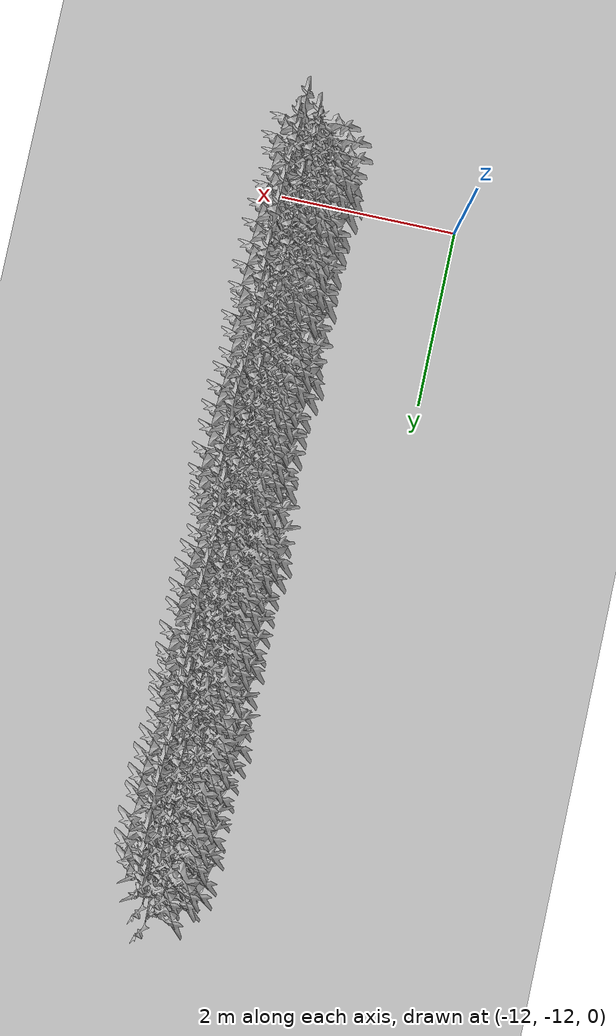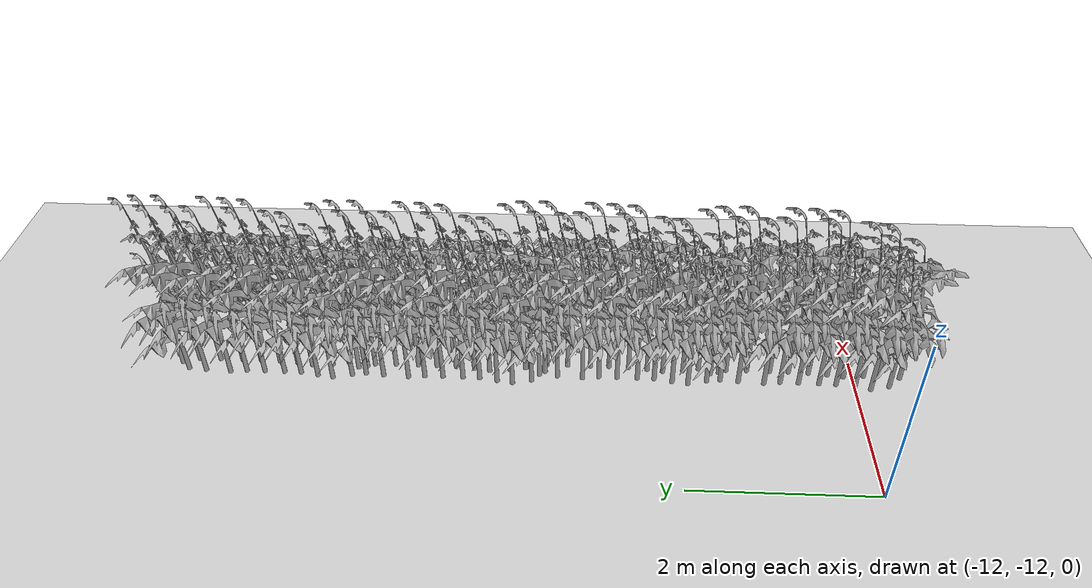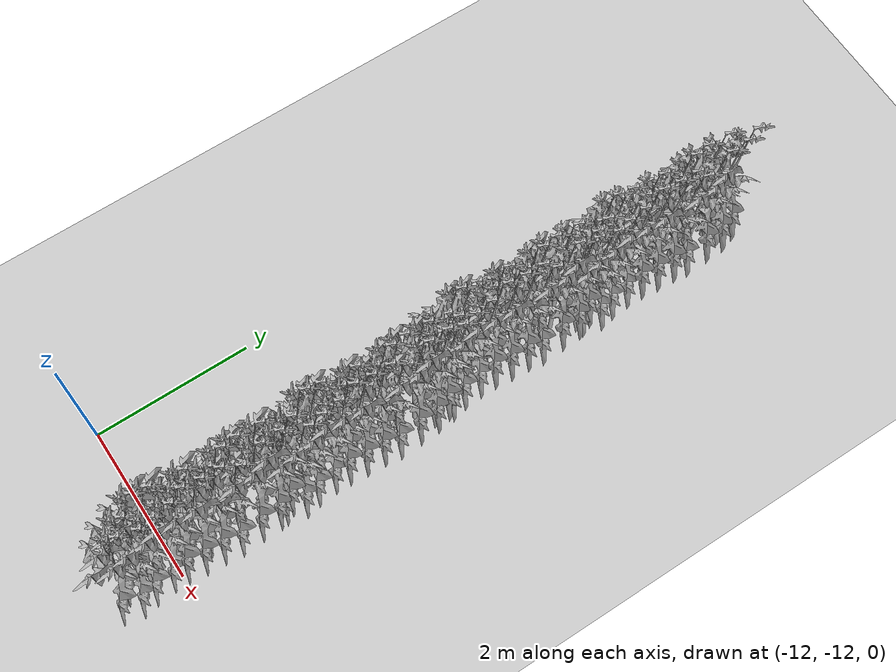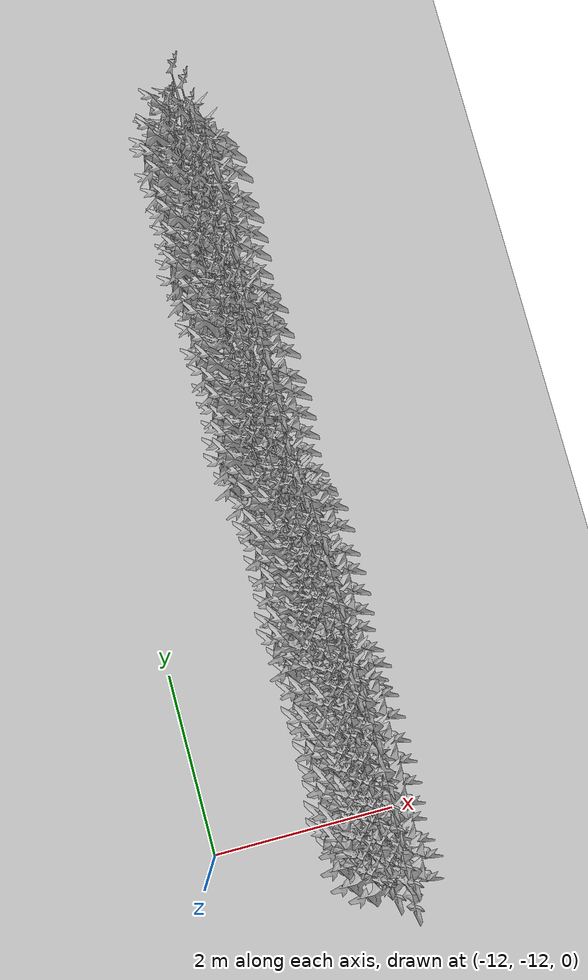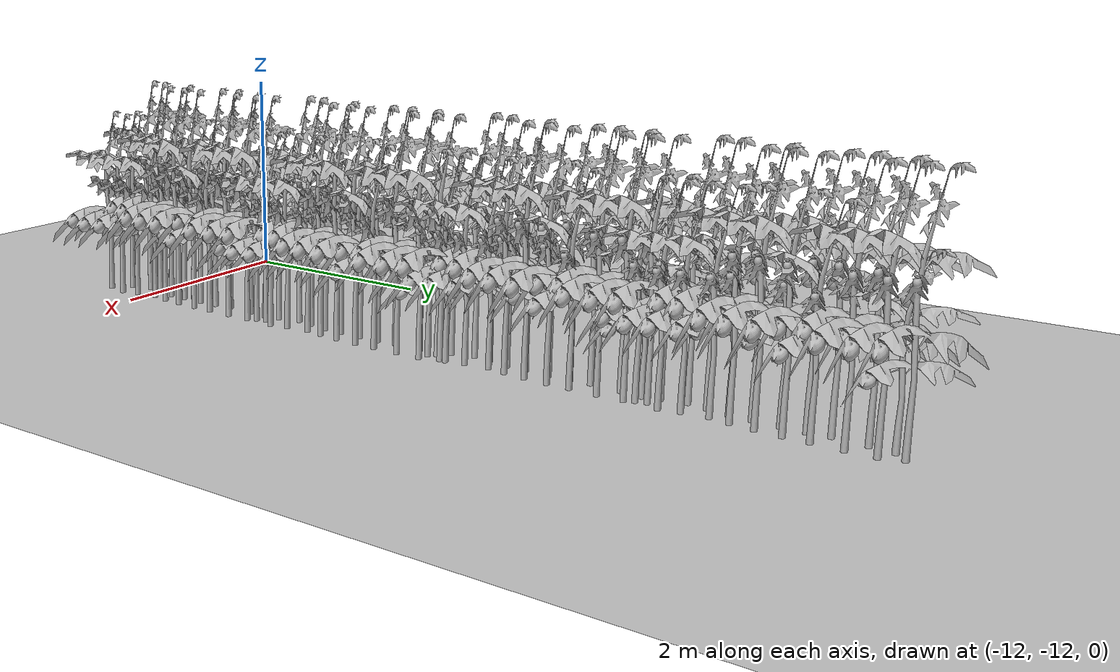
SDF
<sdf version="1.6">
 <world name="default">
  <model name="ground_plane">
   <static>1</static>
   <link name="link">
    <collision name="collision">
     <geometry><plane><normal>0 0 1</normal><size>100 100</size></plane></geometry>
     <surface>
      <contact><collide_bitmask>65535</collide_bitmask></contact>
      <friction><ode><mu>100</mu><mu2>50</mu2></ode></friction>
     </surface>
    </collision>
    <visual name="visual">
     <cast_shadows>0</cast_shadows>
     <geometry><plane><normal>0 0 1</normal><size>100 100</size></plane></geometry>
     <material>
      <script><uri>file://media/materials/scripts/gazebo.material</uri><name>Gazebo/Grey</name></script>
     </material>
    </visual>
   </link>
  </model>
  <model name="MIddle_Plant_3_6">
   <model name="MIddle_Plant_1">
    <model name="tomato_plant_big">
     <static>1</static>
     <link name="link">
      <collision name="collision">
       <pose>0 0 0 1.5708 -0 0</pose>
       <geometry><mesh><scale>0.5 0.6 0.5</scale><uri>model://stick/meshes/stick.dae</uri></mesh></geometry>
      </collision>
      <visual name="visual">
       <geometry>
        <mesh><scale>5e-06 5e-06 7e-06</scale><uri>model://tomato_plant_big/meshes/tomato-plant.dae</uri></mesh>
       </geometry>
      </visual>
     </link>
     <pose>-0.144318 -0.693607 -0 0 -0 0</pose>
    </model>
    <model name="tomato_plant_big_0">
     <static>1</static>
     <link name="link">
      <collision name="collision">
       <pose>0 0 0 1.5708 -0 0</pose>
       <geometry><mesh><scale>0.5 0.6 0.5</scale><uri>model://stick/meshes/stick.dae</uri></mesh></geometry>
      </collision>
      <visual name="visual">
       <geometry>
        <mesh><scale>5e-06 5e-06 7e-06</scale><uri>model://tomato_plant_big/meshes/tomato-plant.dae</uri></mesh>
       </geometry>
      </visual>
     </link>
     <pose>-0.11784 -0.519827 0 0 -0 0</pose>
    </model>
    <model name="tomato_plant_big_1">
     <static>1</static>
     <link name="link">
      <collision name="collision">
       <pose>0 0 0 1.5708 -0 0</pose>
       <geometry><mesh><scale>0.5 0.6 0.5</scale><uri>model://stick/meshes/stick.dae</uri></mesh></geometry>
      </collision>
      <visual name="visual">
       <geometry>
        <mesh><scale>5e-06 5e-06 7e-06</scale><uri>model://tomato_plant_big/meshes/tomato-plant.dae</uri></mesh>
       </geometry>
      </visual>
     </link>
     <pose>0.073755 -0.247584 0 0 -0 0</pose>
    </model>
    <model name="tomato_plant_big_10">
     <static>1</static>
     <link name="link">
      <collision name="collision">
       <pose>0 0 0 1.5708 -0 0</pose>
       <geometry><mesh><scale>0.5 0.6 0.5</scale><uri>model://stick/meshes/stick.dae</uri></mesh></geometry>
      </collision>
      <visual name="visual">
       <geometry>
        <mesh><scale>5e-06 5e-06 7e-06</scale><uri>model://tomato_plant_big/meshes/tomato-plant.dae</uri></mesh>
       </geometry>
      </visual>
     </link>
     <pose>0.037052 1.07094 0 0 -0 0</pose>
    </model>
    <model name="tomato_plant_big_2">
     <static>1</static>
     <link name="link">
      <collision name="collision">
       <pose>0 0 0 1.5708 -0 0</pose>
       <geometry><mesh><scale>0.5 0.6 0.5</scale><uri>model://stick/meshes/stick.dae</uri></mesh></geometry>
      </collision>
      <visual name="visual">
       <geometry>
        <mesh><scale>5e-06 5e-06 7e-06</scale><uri>model://tomato_plant_big/meshes/tomato-plant.dae</uri></mesh>
       </geometry>
      </visual>
     </link>
     <pose>-0.076926 -0.131165 0 0 -0 0</pose>
    </model>
    <model name="tomato_plant_big_3">
     <static>1</static>
     <link name="link">
      <collision name="collision">
       <pose>0 0 0 1.5708 -0 0</pose>
       <geometry><mesh><scale>0.5 0.6 0.5</scale><uri>model://stick/meshes/stick.dae</uri></mesh></geometry>
      </collision>
      <visual name="visual">
       <geometry>
        <mesh><scale>5e-06 5e-06 7e-06</scale><uri>model://tomato_plant_big/meshes/tomato-plant.dae</uri></mesh>
       </geometry>
      </visual>
     </link>
     <pose>0.093714 -0.038386 0 0 -0 0</pose>
    </model>
    <model name="tomato_plant_big_4">
     <static>1</static>
     <link name="link">
      <collision name="collision">
       <pose>0 0 0 1.5708 -0 0</pose>
       <geometry><mesh><scale>0.5 0.6 0.5</scale><uri>model://stick/meshes/stick.dae</uri></mesh></geometry>
      </collision>
      <visual name="visual">
       <geometry>
        <mesh><scale>5e-06 5e-06 7e-06</scale><uri>model://tomato_plant_big/meshes/tomato-plant.dae</uri></mesh>
       </geometry>
      </visual>
     </link>
     <pose>0.103117 0.184356 0 0 -0 0</pose>
    </model>
    <model name="tomato_plant_big_5">
     <static>1</static>
     <link name="link">
      <collision name="collision">
       <pose>0 0 0 1.5708 -0 0</pose>
       <geometry><mesh><scale>0.5 0.6 0.5</scale><uri>model://stick/meshes/stick.dae</uri></mesh></geometry>
      </collision>
      <visual name="visual">
       <geometry>
        <mesh><scale>5e-06 5e-06 7e-06</scale><uri>model://tomato_plant_big/meshes/tomato-plant.dae</uri></mesh>
       </geometry>
      </visual>
     </link>
     <pose>-0.074883 0.301479 0 0 -0 0</pose>
    </model>
    <model name="tomato_plant_big_6">
     <static>1</static>
     <link name="link">
      <collision name="collision">
       <pose>0 0 0 1.5708 -0 0</pose>
       <geometry><mesh><scale>0.5 0.6 0.5</scale><uri>model://stick/meshes/stick.dae</uri></mesh></geometry>
      </collision>
      <visual name="visual">
       <geometry>
        <mesh><scale>5e-06 5e-06 7e-06</scale><uri>model://tomato_plant_big/meshes/tomato-plant.dae</uri></mesh>
       </geometry>
      </visual>
     </link>
     <pose>-0.096921 0.484007 0 0 -0 0</pose>
    </model>
    <model name="tomato_plant_big_7">
     <static>1</static>
     <link name="link">
      <collision name="collision">
       <pose>0 0 0 1.5708 -0 0</pose>
       <geometry><mesh><scale>0.5 0.6 0.5</scale><uri>model://stick/meshes/stick.dae</uri></mesh></geometry>
      </collision>
      <visual name="visual">
       <geometry>
        <mesh><scale>5e-06 5e-06 7e-06</scale><uri>model://tomato_plant_big/meshes/tomato-plant.dae</uri></mesh>
       </geometry>
      </visual>
     </link>
     <pose>0.107491 0.653976 0 0 -0 0</pose>
    </model>
    <model name="tomato_plant_big_8">
     <static>1</static>
     <link name="link">
      <collision name="collision">
       <pose>0 0 0 1.5708 -0 0</pose>
       <geometry><mesh><scale>0.5 0.6 0.5</scale><uri>model://stick/meshes/stick.dae</uri></mesh></geometry>
      </collision>
      <visual name="visual">
       <geometry>
        <mesh><scale>5e-06 5e-06 7e-06</scale><uri>model://tomato_plant_big/meshes/tomato-plant.dae</uri></mesh>
       </geometry>
      </visual>
     </link>
     <pose>-0.07985 0.768549 0 0 -0 0</pose>
    </model>
    <model name="tomato_plant_big_9">
     <static>1</static>
     <link name="link">
      <collision name="collision">
       <pose>0 0 0 1.5708 -0 0</pose>
       <geometry><mesh><scale>0.5 0.6 0.5</scale><uri>model://stick/meshes/stick.dae</uri></mesh></geometry>
      </collision>
      <visual name="visual">
       <geometry>
        <mesh><scale>5e-06 5e-06 7e-06</scale><uri>model://tomato_plant_big/meshes/tomato-plant.dae</uri></mesh>
       </geometry>
      </visual>
     </link>
     <pose>0.098361 0.890852 0 0 -0 0</pose>
    </model>
    <model name="tomato_plant_medium">
     <static>1</static>
     <link name="link">
      <collision name="collision">
       <pose>0 0 0 1.5708 -0 0</pose>
       <geometry><mesh><scale>0.5 0.5 0.5</scale><uri>model://stick/meshes/stick.dae</uri></mesh></geometry>
      </collision>
      <visual name="visual">
       <geometry>
        <mesh><scale>5e-06 5e-06 6e-06</scale><uri>model://tomato_plant_medium/meshes/tomato-plant.dae</uri></mesh>
       </geometry>
      </visual>
     </link>
     <pose>0.056913 -1.05328 0 0 -0 0</pose>
    </model>
    <model name="tomato_plant_medium_0">
     <static>1</static>
     <link name="link">
      <collision name="collision">
       <pose>0 0 0 1.5708 -0 0</pose>
       <geometry><mesh><scale>0.5 0.5 0.5</scale><uri>model://stick/meshes/stick.dae</uri></mesh></geometry>
      </collision>
      <visual name="visual">
       <geometry>
        <mesh><scale>5e-06 5e-06 6e-06</scale><uri>model://tomato_plant_medium/meshes/tomato-plant.dae</uri></mesh>
       </geometry>
      </visual>
     </link>
     <pose>-0.092719 -0.905729 0 0 -0 0</pose>
    </model>
    <model name="tomato_plant_medium_1">
     <static>1</static>
     <link name="link">
      <collision name="collision">
       <pose>0 0 0 1.5708 -0 0</pose>
       <geometry><mesh><scale>0.5 0.5 0.5</scale><uri>model://stick/meshes/stick.dae</uri></mesh></geometry>
      </collision>
      <visual name="visual">
       <geometry>
        <mesh><scale>5e-06 5e-06 6e-06</scale><uri>model://tomato_plant_medium/meshes/tomato-plant.dae</uri></mesh>
       </geometry>
      </visual>
     </link>
     <pose>0.108962 -0.829637 0 0 -0 0</pose>
    </model>
    <model name="tomato_plant_medium_2">
     <static>1</static>
     <link name="link">
      <collision name="collision">
       <pose>0 0 0 1.5708 -0 0</pose>
       <geometry><mesh><scale>0.5 0.5 0.5</scale><uri>model://stick/meshes/stick.dae</uri></mesh></geometry>
      </collision>
      <visual name="visual">
       <geometry>
        <mesh><scale>5e-06 5e-06 6e-06</scale><uri>model://tomato_plant_medium/meshes/tomato-plant.dae</uri></mesh>
       </geometry>
      </visual>
     </link>
     <pose>0.071216 -0.652507 0 0 -0 0</pose>
    </model>
    <model name="tomato_plant_medium_3">
     <static>1</static>
     <link name="link">
      <collision name="collision">
       <pose>0 0 0 1.5708 -0 0</pose>
       <geometry><mesh><scale>0.5 0.5 0.5</scale><uri>model://stick/meshes/stick.dae</uri></mesh></geometry>
      </collision>
      <visual name="visual">
       <geometry>
        <mesh><scale>5e-06 5e-06 6e-06</scale><uri>model://tomato_plant_medium/meshes/tomato-plant.dae</uri></mesh>
       </geometry>
      </visual>
     </link>
     <pose>0.047335 -0.423046 0 0 -0 0</pose>
    </model>
    <model name="tomato_plant_medium_4">
     <static>1</static>
     <link name="link">
      <collision name="collision">
       <pose>0 0 0 1.5708 -0 0</pose>
       <geometry><mesh><scale>0.5 0.5 0.5</scale><uri>model://stick/meshes/stick.dae</uri></mesh></geometry>
      </collision>
      <visual name="visual">
       <geometry>
        <mesh><scale>5e-06 5e-06 6e-06</scale><uri>model://tomato_plant_medium/meshes/tomato-plant.dae</uri></mesh>
       </geometry>
      </visual>
     </link>
     <pose>-0.081012 -0.320324 0 0 -0 0</pose>
    </model>
    <model name="tomato_plant_medium_5">
     <static>1</static>
     <link name="link">
      <collision name="collision">
       <pose>0 0 0 1.5708 -0 0</pose>
       <geometry><mesh><scale>0.5 0.5 0.5</scale><uri>model://stick/meshes/stick.dae</uri></mesh></geometry>
      </collision>
      <visual name="visual">
       <geometry>
        <mesh><scale>5e-06 5e-06 6e-06</scale><uri>model://tomato_plant_medium/meshes/tomato-plant.dae</uri></mesh>
       </geometry>
      </visual>
     </link>
     <pose>-0.07452 0.095988 0 0 -0 0</pose>
    </model>
    <model name="tomato_plant_medium_6">
     <static>1</static>
     <link name="link">
      <collision name="collision">
       <pose>0 0 0 1.5708 -0 0</pose>
       <geometry><mesh><scale>0.5 0.5 0.5</scale><uri>model://stick/meshes/stick.dae</uri></mesh></geometry>
      </collision>
      <visual name="visual">
       <geometry>
        <mesh><scale>5e-06 5e-06 6e-06</scale><uri>model://tomato_plant_medium/meshes/tomato-plant.dae</uri></mesh>
       </geometry>
      </visual>
     </link>
     <pose>0.101424 0.395443 0 0 -0 0</pose>
    </model>
    <model name="tomato_plant_small">
     <static>1</static>
     <link name="link">
      <collision name="collision">
       <pose>0 0 0 1.5708 -0 0</pose>
       <geometry><mesh><scale>0.5 0.45 0.5</scale><uri>model://stick/meshes/stick.dae</uri></mesh></geometry>
      </collision>
      <visual name="visual">
       <geometry>
        <mesh><scale>5e-06 5e-06 5e-06</scale><uri>model://tomato_plant_small/meshes/tomato-plant.dae</uri></mesh>
       </geometry>
      </visual>
     </link>
     <pose>-0.060351 0.969512 0 0 -0 0</pose>
    </model>
    <static>0</static>
    <pose>0.040757 1.77284 0 0 -0 0</pose>
   </model>
   <model name="MIddle_Plant_2">
    <model name="MIddle_Plant_1">
     <model name="tomato_plant_big">
      <static>1</static>
      <link name="link">
       <collision name="collision">
        <pose>0 0 0 1.5708 -0 0</pose>
        <geometry><mesh><scale>0.5 0.6 0.5</scale><uri>model://stick/meshes/stick.dae</uri></mesh></geometry>
       </collision>
       <visual name="visual">
        <geometry>
         <mesh><scale>5e-06 5e-06 7e-06</scale><uri>model://tomato_plant_big/meshes/tomato-plant.dae</uri></mesh>
        </geometry>
       </visual>
      </link>
      <pose>-0.144318 -0.693607 -0 0 -0 0</pose>
     </model>
     <model name="tomato_plant_big_0">
      <static>1</static>
      <link name="link">
       <collision name="collision">
        <pose>0 0 0 1.5708 -0 0</pose>
        <geometry><mesh><scale>0.5 0.6 0.5</scale><uri>model://stick/meshes/stick.dae</uri></mesh></geometry>
       </collision>
       <visual name="visual">
        <geometry>
         <mesh><scale>5e-06 5e-06 7e-06</scale><uri>model://tomato_plant_big/meshes/tomato-plant.dae</uri></mesh>
        </geometry>
       </visual>
      </link>
      <pose>-0.11784 -0.519827 0 0 -0 0</pose>
     </model>
     <model name="tomato_plant_big_1">
      <static>1</static>
      <link name="link">
       <collision name="collision">
        <pose>0 0 0 1.5708 -0 0</pose>
        <geometry><mesh><scale>0.5 0.6 0.5</scale><uri>model://stick/meshes/stick.dae</uri></mesh></geometry>
       </collision>
       <visual name="visual">
        <geometry>
         <mesh><scale>5e-06 5e-06 7e-06</scale><uri>model://tomato_plant_big/meshes/tomato-plant.dae</uri></mesh>
        </geometry>
       </visual>
      </link>
      <pose>0.073755 -0.247584 0 0 -0 0</pose>
     </model>
     <model name="tomato_plant_big_10">
      <static>1</static>
      <link name="link">
       <collision name="collision">
        <pose>0 0 0 1.5708 -0 0</pose>
        <geometry><mesh><scale>0.5 0.6 0.5</scale><uri>model://stick/meshes/stick.dae</uri></mesh></geometry>
       </collision>
       <visual name="visual">
        <geometry>
         <mesh><scale>5e-06 5e-06 7e-06</scale><uri>model://tomato_plant_big/meshes/tomato-plant.dae</uri></mesh>
        </geometry>
       </visual>
      </link>
      <pose>0.037052 1.07094 0 0 -0 0</pose>
     </model>
     <model name="tomato_plant_big_2">
      <static>1</static>
      <link name="link">
       <collision name="collision">
        <pose>0 0 0 1.5708 -0 0</pose>
        <geometry><mesh><scale>0.5 0.6 0.5</scale><uri>model://stick/meshes/stick.dae</uri></mesh></geometry>
       </collision>
       <visual name="visual">
        <geometry>
         <mesh><scale>5e-06 5e-06 7e-06</scale><uri>model://tomato_plant_big/meshes/tomato-plant.dae</uri></mesh>
        </geometry>
       </visual>
      </link>
      <pose>-0.076926 -0.131165 0 0 -0 0</pose>
     </model>
     <model name="tomato_plant_big_3">
      <static>1</static>
      <link name="link">
       <collision name="collision">
        <pose>0 0 0 1.5708 -0 0</pose>
        <geometry><mesh><scale>0.5 0.6 0.5</scale><uri>model://stick/meshes/stick.dae</uri></mesh></geometry>
       </collision>
       <visual name="visual">
        <geometry>
         <mesh><scale>5e-06 5e-06 7e-06</scale><uri>model://tomato_plant_big/meshes/tomato-plant.dae</uri></mesh>
        </geometry>
       </visual>
      </link>
      <pose>0.093714 -0.038386 0 0 -0 0</pose>
     </model>
     <model name="tomato_plant_big_4">
      <static>1</static>
      <link name="link">
       <collision name="collision">
        <pose>0 0 0 1.5708 -0 0</pose>
        <geometry><mesh><scale>0.5 0.6 0.5</scale><uri>model://stick/meshes/stick.dae</uri></mesh></geometry>
       </collision>
       <visual name="visual">
        <geometry>
         <mesh><scale>5e-06 5e-06 7e-06</scale><uri>model://tomato_plant_big/meshes/tomato-plant.dae</uri></mesh>
        </geometry>
       </visual>
      </link>
      <pose>0.103117 0.184356 0 0 -0 0</pose>
     </model>
     <model name="tomato_plant_big_5">
      <static>1</static>
      <link name="link">
       <collision name="collision">
        <pose>0 0 0 1.5708 -0 0</pose>
        <geometry><mesh><scale>0.5 0.6 0.5</scale><uri>model://stick/meshes/stick.dae</uri></mesh></geometry>
       </collision>
       <visual name="visual">
        <geometry>
         <mesh><scale>5e-06 5e-06 7e-06</scale><uri>model://tomato_plant_big/meshes/tomato-plant.dae</uri></mesh>
        </geometry>
       </visual>
      </link>
      <pose>-0.074883 0.301479 0 0 -0 0</pose>
     </model>
     <model name="tomato_plant_big_6">
      <static>1</static>
      <link name="link">
       <collision name="collision">
        <pose>0 0 0 1.5708 -0 0</pose>
        <geometry><mesh><scale>0.5 0.6 0.5</scale><uri>model://stick/meshes/stick.dae</uri></mesh></geometry>
       </collision>
       <visual name="visual">
        <geometry>
         <mesh><scale>5e-06 5e-06 7e-06</scale><uri>model://tomato_plant_big/meshes/tomato-plant.dae</uri></mesh>
        </geometry>
       </visual>
      </link>
      <pose>-0.096921 0.484007 0 0 -0 0</pose>
     </model>
     <model name="tomato_plant_big_7">
      <static>1</static>
      <link name="link">
       <collision name="collision">
        <pose>0 0 0 1.5708 -0 0</pose>
        <geometry><mesh><scale>0.5 0.6 0.5</scale><uri>model://stick/meshes/stick.dae</uri></mesh></geometry>
       </collision>
       <visual name="visual">
        <geometry>
         <mesh><scale>5e-06 5e-06 7e-06</scale><uri>model://tomato_plant_big/meshes/tomato-plant.dae</uri></mesh>
        </geometry>
       </visual>
      </link>
      <pose>0.107491 0.653976 0 0 -0 0</pose>
     </model>
     <model name="tomato_plant_big_8">
      <static>1</static>
      <link name="link">
       <collision name="collision">
        <pose>0 0 0 1.5708 -0 0</pose>
        <geometry><mesh><scale>0.5 0.6 0.5</scale><uri>model://stick/meshes/stick.dae</uri></mesh></geometry>
       </collision>
       <visual name="visual">
        <geometry>
         <mesh><scale>5e-06 5e-06 7e-06</scale><uri>model://tomato_plant_big/meshes/tomato-plant.dae</uri></mesh>
        </geometry>
       </visual>
      </link>
      <pose>-0.07985 0.768549 0 0 -0 0</pose>
     </model>
     <model name="tomato_plant_big_9">
      <static>1</static>
      <link name="link">
       <collision name="collision">
        <pose>0 0 0 1.5708 -0 0</pose>
        <geometry><mesh><scale>0.5 0.6 0.5</scale><uri>model://stick/meshes/stick.dae</uri></mesh></geometry>
       </collision>
       <visual name="visual">
        <geometry>
         <mesh><scale>5e-06 5e-06 7e-06</scale><uri>model://tomato_plant_big/meshes/tomato-plant.dae</uri></mesh>
        </geometry>
       </visual>
      </link>
      <pose>0.098361 0.890852 0 0 -0 0</pose>
     </model>
     <model name="tomato_plant_medium">
      <static>1</static>
      <link name="link">
       <collision name="collision">
        <pose>0 0 0 1.5708 -0 0</pose>
        <geometry><mesh><scale>0.5 0.5 0.5</scale><uri>model://stick/meshes/stick.dae</uri></mesh></geometry>
       </collision>
       <visual name="visual">
        <geometry>
         <mesh><scale>5e-06 5e-06 6e-06</scale><uri>model://tomato_plant_medium/meshes/tomato-plant.dae</uri></mesh>
        </geometry>
       </visual>
      </link>
      <pose>0.056913 -1.05328 0 0 -0 0</pose>
     </model>
     <model name="tomato_plant_medium_0">
      <static>1</static>
      <link name="link">
       <collision name="collision">
        <pose>0 0 0 1.5708 -0 0</pose>
        <geometry><mesh><scale>0.5 0.5 0.5</scale><uri>model://stick/meshes/stick.dae</uri></mesh></geometry>
       </collision>
       <visual name="visual">
        <geometry>
         <mesh><scale>5e-06 5e-06 6e-06</scale><uri>model://tomato_plant_medium/meshes/tomato-plant.dae</uri></mesh>
        </geometry>
       </visual>
      </link>
      <pose>-0.092719 -0.905729 0 0 -0 0</pose>
     </model>
     <model name="tomato_plant_medium_1">
      <static>1</static>
      <link name="link">
       <collision name="collision">
        <pose>0 0 0 1.5708 -0 0</pose>
        <geometry><mesh><scale>0.5 0.5 0.5</scale><uri>model://stick/meshes/stick.dae</uri></mesh></geometry>
       </collision>
       <visual name="visual">
        <geometry>
         <mesh><scale>5e-06 5e-06 6e-06</scale><uri>model://tomato_plant_medium/meshes/tomato-plant.dae</uri></mesh>
        </geometry>
       </visual>
      </link>
      <pose>0.108962 -0.829637 0 0 -0 0</pose>
     </model>
     <model name="tomato_plant_medium_2">
      <static>1</static>
      <link name="link">
       <collision name="collision">
        <pose>0 0 0 1.5708 -0 0</pose>
        <geometry><mesh><scale>0.5 0.5 0.5</scale><uri>model://stick/meshes/stick.dae</uri></mesh></geometry>
       </collision>
       <visual name="visual">
        <geometry>
         <mesh><scale>5e-06 5e-06 6e-06</scale><uri>model://tomato_plant_medium/meshes/tomato-plant.dae</uri></mesh>
        </geometry>
       </visual>
      </link>
      <pose>0.071216 -0.652507 0 0 -0 0</pose>
     </model>
     <model name="tomato_plant_medium_3">
      <static>1</static>
      <link name="link">
       <collision name="collision">
        <pose>0 0 0 1.5708 -0 0</pose>
        <geometry><mesh><scale>0.5 0.5 0.5</scale><uri>model://stick/meshes/stick.dae</uri></mesh></geometry>
       </collision>
       <visual name="visual">
        <geometry>
         <mesh><scale>5e-06 5e-06 6e-06</scale><uri>model://tomato_plant_medium/meshes/tomato-plant.dae</uri></mesh>
        </geometry>
       </visual>
      </link>
      <pose>0.047335 -0.423046 0 0 -0 0</pose>
     </model>
     <model name="tomato_plant_medium_4">
      <static>1</static>
      <link name="link">
       <collision name="collision">
        <pose>0 0 0 1.5708 -0 0</pose>
        <geometry><mesh><scale>0.5 0.5 0.5</scale><uri>model://stick/meshes/stick.dae</uri></mesh></geometry>
       </collision>
       <visual name="visual">
        <geometry>
         <mesh><scale>5e-06 5e-06 6e-06</scale><uri>model://tomato_plant_medium/meshes/tomato-plant.dae</uri></mesh>
        </geometry>
       </visual>
      </link>
      <pose>-0.081012 -0.320324 0 0 -0 0</pose>
     </model>
     <model name="tomato_plant_medium_5">
      <static>1</static>
      <link name="link">
       <collision name="collision">
        <pose>0 0 0 1.5708 -0 0</pose>
        <geometry><mesh><scale>0.5 0.5 0.5</scale><uri>model://stick/meshes/stick.dae</uri></mesh></geometry>
       </collision>
       <visual name="visual">
        <geometry>
         <mesh><scale>5e-06 5e-06 6e-06</scale><uri>model://tomato_plant_medium/meshes/tomato-plant.dae</uri></mesh>
        </geometry>
       </visual>
      </link>
      <pose>-0.07452 0.095988 0 0 -0 0</pose>
     </model>
     <model name="tomato_plant_medium_6">
      <static>1</static>
      <link name="link">
       <collision name="collision">
        <pose>0 0 0 1.5708 -0 0</pose>
        <geometry><mesh><scale>0.5 0.5 0.5</scale><uri>model://stick/meshes/stick.dae</uri></mesh></geometry>
       </collision>
       <visual name="visual">
        <geometry>
         <mesh><scale>5e-06 5e-06 6e-06</scale><uri>model://tomato_plant_medium/meshes/tomato-plant.dae</uri></mesh>
        </geometry>
       </visual>
      </link>
      <pose>0.101424 0.395443 0 0 -0 0</pose>
     </model>
     <model name="tomato_plant_small">
      <static>1</static>
      <link name="link">
       <collision name="collision">
        <pose>0 0 0 1.5708 -0 0</pose>
        <geometry><mesh><scale>0.5 0.45 0.5</scale><uri>model://stick/meshes/stick.dae</uri></mesh></geometry>
       </collision>
       <visual name="visual">
        <geometry>
         <mesh><scale>5e-06 5e-06 5e-06</scale><uri>model://tomato_plant_small/meshes/tomato-plant.dae</uri></mesh>
        </geometry>
       </visual>
      </link>
      <pose>-0.060351 0.969512 0 0 -0 0</pose>
     </model>
     <static>0</static>
     <pose>0.763113 0.028917 0 0 -0 0</pose>
    </model>
    <model name="tomato_plant_big">
     <static>1</static>
     <link name="link">
      <collision name="collision">
       <pose>0 0 0 1.5708 -0 0</pose>
       <geometry><mesh><scale>0.5 0.6 0.5</scale><uri>model://stick/meshes/stick.dae</uri></mesh></geometry>
      </collision>
      <visual name="visual">
       <geometry>
        <mesh><scale>5e-06 5e-06 7e-06</scale><uri>model://tomato_plant_big/meshes/tomato-plant.dae</uri></mesh>
       </geometry>
      </visual>
     </link>
     <pose>0.613724 -2.69399 -0 0 -0 0</pose>
    </model>
    <model name="tomato_plant_big_0">
     <static>1</static>
     <link name="link">
      <collision name="collision">
       <pose>0 0 0 1.5708 -0 0</pose>
       <geometry><mesh><scale>0.5 0.6 0.5</scale><uri>model://stick/meshes/stick.dae</uri></mesh></geometry>
      </collision>
      <visual name="visual">
       <geometry>
        <mesh><scale>5e-06 5e-06 7e-06</scale><uri>model://tomato_plant_big/meshes/tomato-plant.dae</uri></mesh>
       </geometry>
      </visual>
     </link>
     <pose>0.640202 -2.52021 0 0 -0 0</pose>
    </model>
    <model name="tomato_plant_big_1">
     <static>1</static>
     <link name="link">
      <collision name="collision">
       <pose>0 0 0 1.5708 -0 0</pose>
       <geometry><mesh><scale>0.5 0.6 0.5</scale><uri>model://stick/meshes/stick.dae</uri></mesh></geometry>
      </collision>
      <visual name="visual">
       <geometry>
        <mesh><scale>5e-06 5e-06 7e-06</scale><uri>model://tomato_plant_big/meshes/tomato-plant.dae</uri></mesh>
       </geometry>
      </visual>
     </link>
     <pose>0.831797 -2.24797 0 0 -0 0</pose>
    </model>
    <model name="tomato_plant_big_10">
     <static>1</static>
     <link name="link">
      <collision name="collision">
       <pose>0 0 0 1.5708 -0 0</pose>
       <geometry><mesh><scale>0.5 0.6 0.5</scale><uri>model://stick/meshes/stick.dae</uri></mesh></geometry>
      </collision>
      <visual name="visual">
       <geometry>
        <mesh><scale>5e-06 5e-06 7e-06</scale><uri>model://tomato_plant_big/meshes/tomato-plant.dae</uri></mesh>
       </geometry>
      </visual>
     </link>
     <pose>0.795094 -0.929446 0 0 -0 0</pose>
    </model>
    <model name="tomato_plant_big_2">
     <static>1</static>
     <link name="link">
      <collision name="collision">
       <pose>0 0 0 1.5708 -0 0</pose>
       <geometry><mesh><scale>0.5 0.6 0.5</scale><uri>model://stick/meshes/stick.dae</uri></mesh></geometry>
      </collision>
      <visual name="visual">
       <geometry>
        <mesh><scale>5e-06 5e-06 7e-06</scale><uri>model://tomato_plant_big/meshes/tomato-plant.dae</uri></mesh>
       </geometry>
      </visual>
     </link>
     <pose>0.681116 -2.13155 0 0 -0 0</pose>
    </model>
    <model name="tomato_plant_big_3">
     <static>1</static>
     <link name="link">
      <collision name="collision">
       <pose>0 0 0 1.5708 -0 0</pose>
       <geometry><mesh><scale>0.5 0.6 0.5</scale><uri>model://stick/meshes/stick.dae</uri></mesh></geometry>
      </collision>
      <visual name="visual">
       <geometry>
        <mesh><scale>5e-06 5e-06 7e-06</scale><uri>model://tomato_plant_big/meshes/tomato-plant.dae</uri></mesh>
       </geometry>
      </visual>
     </link>
     <pose>0.851755 -2.03877 0 0 -0 0</pose>
    </model>
    <model name="tomato_plant_big_4">
     <static>1</static>
     <link name="link">
      <collision name="collision">
       <pose>0 0 0 1.5708 -0 0</pose>
       <geometry><mesh><scale>0.5 0.6 0.5</scale><uri>model://stick/meshes/stick.dae</uri></mesh></geometry>
      </collision>
      <visual name="visual">
       <geometry>
        <mesh><scale>5e-06 5e-06 7e-06</scale><uri>model://tomato_plant_big/meshes/tomato-plant.dae</uri></mesh>
       </geometry>
      </visual>
     </link>
     <pose>0.861158 -1.81603 0 0 -0 0</pose>
    </model>
    <model name="tomato_plant_big_5">
     <static>1</static>
     <link name="link">
      <collision name="collision">
       <pose>0 0 0 1.5708 -0 0</pose>
       <geometry><mesh><scale>0.5 0.6 0.5</scale><uri>model://stick/meshes/stick.dae</uri></mesh></geometry>
      </collision>
      <visual name="visual">
       <geometry>
        <mesh><scale>5e-06 5e-06 7e-06</scale><uri>model://tomato_plant_big/meshes/tomato-plant.dae</uri></mesh>
       </geometry>
      </visual>
     </link>
     <pose>0.683158 -1.69891 0 0 -0 0</pose>
    </model>
    <model name="tomato_plant_big_6">
     <static>1</static>
     <link name="link">
      <collision name="collision">
       <pose>0 0 0 1.5708 -0 0</pose>
       <geometry><mesh><scale>0.5 0.6 0.5</scale><uri>model://stick/meshes/stick.dae</uri></mesh></geometry>
      </collision>
      <visual name="visual">
       <geometry>
        <mesh><scale>5e-06 5e-06 7e-06</scale><uri>model://tomato_plant_big/meshes/tomato-plant.dae</uri></mesh>
       </geometry>
      </visual>
     </link>
     <pose>0.66112 -1.51638 0 0 -0 0</pose>
    </model>
    <model name="tomato_plant_big_7">
     <static>1</static>
     <link name="link">
      <collision name="collision">
       <pose>0 0 0 1.5708 -0 0</pose>
       <geometry><mesh><scale>0.5 0.6 0.5</scale><uri>model://stick/meshes/stick.dae</uri></mesh></geometry>
      </collision>
      <visual name="visual">
       <geometry>
        <mesh><scale>5e-06 5e-06 7e-06</scale><uri>model://tomato_plant_big/meshes/tomato-plant.dae</uri></mesh>
       </geometry>
      </visual>
     </link>
     <pose>0.865532 -1.34641 0 0 -0 0</pose>
    </model>
    <model name="tomato_plant_big_8">
     <static>1</static>
     <link name="link">
      <collision name="collision">
       <pose>0 0 0 1.5708 -0 0</pose>
       <geometry><mesh><scale>0.5 0.6 0.5</scale><uri>model://stick/meshes/stick.dae</uri></mesh></geometry>
      </collision>
      <visual name="visual">
       <geometry>
        <mesh><scale>5e-06 5e-06 7e-06</scale><uri>model://tomato_plant_big/meshes/tomato-plant.dae</uri></mesh>
       </geometry>
      </visual>
     </link>
     <pose>0.678192 -1.23184 0 0 -0 0</pose>
    </model>
    <model name="tomato_plant_big_9">
     <static>1</static>
     <link name="link">
      <collision name="collision">
       <pose>0 0 0 1.5708 -0 0</pose>
       <geometry><mesh><scale>0.5 0.6 0.5</scale><uri>model://stick/meshes/stick.dae</uri></mesh></geometry>
      </collision>
      <visual name="visual">
       <geometry>
        <mesh><scale>5e-06 5e-06 7e-06</scale><uri>model://tomato_plant_big/meshes/tomato-plant.dae</uri></mesh>
       </geometry>
      </visual>
     </link>
     <pose>0.856402 -1.10953 0 0 -0 0</pose>
    </model>
    <model name="tomato_plant_medium">
     <static>1</static>
     <link name="link">
      <collision name="collision">
       <pose>0 0 0 1.5708 -0 0</pose>
       <geometry><mesh><scale>0.5 0.5 0.5</scale><uri>model://stick/meshes/stick.dae</uri></mesh></geometry>
      </collision>
      <visual name="visual">
       <geometry>
        <mesh><scale>5e-06 5e-06 6e-06</scale><uri>model://tomato_plant_medium/meshes/tomato-plant.dae</uri></mesh>
       </geometry>
      </visual>
     </link>
     <pose>0.814955 -3.05367 0 0 -0 0</pose>
    </model>
    <model name="tomato_plant_medium_0">
     <static>1</static>
     <link name="link">
      <collision name="collision">
       <pose>0 0 0 1.5708 -0 0</pose>
       <geometry><mesh><scale>0.5 0.5 0.5</scale><uri>model://stick/meshes/stick.dae</uri></mesh></geometry>
      </collision>
      <visual name="visual">
       <geometry>
        <mesh><scale>5e-06 5e-06 6e-06</scale><uri>model://tomato_plant_medium/meshes/tomato-plant.dae</uri></mesh>
       </geometry>
      </visual>
     </link>
     <pose>0.665322 -2.90611 0 0 -0 0</pose>
    </model>
    <model name="tomato_plant_medium_1">
     <static>1</static>
     <link name="link">
      <collision name="collision">
       <pose>0 0 0 1.5708 -0 0</pose>
       <geometry><mesh><scale>0.5 0.5 0.5</scale><uri>model://stick/meshes/stick.dae</uri></mesh></geometry>
      </collision>
      <visual name="visual">
       <geometry>
        <mesh><scale>5e-06 5e-06 6e-06</scale><uri>model://tomato_plant_medium/meshes/tomato-plant.dae</uri></mesh>
       </geometry>
      </visual>
     </link>
     <pose>0.867004 -2.83002 0 0 -0 0</pose>
    </model>
    <model name="tomato_plant_medium_2">
     <static>1</static>
     <link name="link">
      <collision name="collision">
       <pose>0 0 0 1.5708 -0 0</pose>
       <geometry><mesh><scale>0.5 0.5 0.5</scale><uri>model://stick/meshes/stick.dae</uri></mesh></geometry>
      </collision>
      <visual name="visual">
       <geometry>
        <mesh><scale>5e-06 5e-06 6e-06</scale><uri>model://tomato_plant_medium/meshes/tomato-plant.dae</uri></mesh>
       </geometry>
      </visual>
     </link>
     <pose>0.829257 -2.65289 0 0 -0 0</pose>
    </model>
    <model name="tomato_plant_medium_3">
     <static>1</static>
     <link name="link">
      <collision name="collision">
       <pose>0 0 0 1.5708 -0 0</pose>
       <geometry><mesh><scale>0.5 0.5 0.5</scale><uri>model://stick/meshes/stick.dae</uri></mesh></geometry>
      </collision>
      <visual name="visual">
       <geometry>
        <mesh><scale>5e-06 5e-06 6e-06</scale><uri>model://tomato_plant_medium/meshes/tomato-plant.dae</uri></mesh>
       </geometry>
      </visual>
     </link>
     <pose>0.805376 -2.42343 0 0 -0 0</pose>
    </model>
    <model name="tomato_plant_medium_4">
     <static>1</static>
     <link name="link">
      <collision name="collision">
       <pose>0 0 0 1.5708 -0 0</pose>
       <geometry><mesh><scale>0.5 0.5 0.5</scale><uri>model://stick/meshes/stick.dae</uri></mesh></geometry>
      </collision>
      <visual name="visual">
       <geometry>
        <mesh><scale>5e-06 5e-06 6e-06</scale><uri>model://tomato_plant_medium/meshes/tomato-plant.dae</uri></mesh>
       </geometry>
      </visual>
     </link>
     <pose>0.67703 -2.32071 0 0 -0 0</pose>
    </model>
    <model name="tomato_plant_medium_5">
     <static>1</static>
     <link name="link">
      <collision name="collision">
       <pose>0 0 0 1.5708 -0 0</pose>
       <geometry><mesh><scale>0.5 0.5 0.5</scale><uri>model://stick/meshes/stick.dae</uri></mesh></geometry>
      </collision>
      <visual name="visual">
       <geometry>
        <mesh><scale>5e-06 5e-06 6e-06</scale><uri>model://tomato_plant_medium/meshes/tomato-plant.dae</uri></mesh>
       </geometry>
      </visual>
     </link>
     <pose>0.683522 -1.9044 0 0 -0 0</pose>
    </model>
    <model name="tomato_plant_medium_6">
     <static>1</static>
     <link name="link">
      <collision name="collision">
       <pose>0 0 0 1.5708 -0 0</pose>
       <geometry><mesh><scale>0.5 0.5 0.5</scale><uri>model://stick/meshes/stick.dae</uri></mesh></geometry>
      </collision>
      <visual name="visual">
       <geometry>
        <mesh><scale>5e-06 5e-06 6e-06</scale><uri>model://tomato_plant_medium/meshes/tomato-plant.dae</uri></mesh>
       </geometry>
      </visual>
     </link>
     <pose>0.859466 -1.60494 0 0 -0 0</pose>
    </model>
    <model name="tomato_plant_small">
     <static>1</static>
     <link name="link">
      <collision name="collision">
       <pose>0 0 0 1.5708 -0 0</pose>
       <geometry><mesh><scale>0.5 0.45 0.5</scale><uri>model://stick/meshes/stick.dae</uri></mesh></geometry>
      </collision>
      <visual name="visual">
       <geometry>
        <mesh><scale>5e-06 5e-06 5e-06</scale><uri>model://tomato_plant_small/meshes/tomato-plant.dae</uri></mesh>
       </geometry>
      </visual>
     </link>
     <pose>0.697691 -1.03087 0 0 -0 0</pose>
    </model>
    <static>0</static>
    <pose>-0.78485 5.73439 0 0 -0 0</pose>
   </model>
   <model name="tomato_plant_big">
    <static>1</static>
    <link name="link">
     <collision name="collision">
      <pose>0 0 0 1.5708 -0 0</pose>
      <geometry><mesh><scale>0.5 0.6 0.5</scale><uri>model://stick/meshes/stick.dae</uri></mesh></geometry>
     </collision>
     <visual name="visual">
      <geometry>
       <mesh><scale>5e-06 5e-06 7e-06</scale><uri>model://tomato_plant_big/meshes/tomato-plant.dae</uri></mesh>
      </geometry>
     </visual>
    </link>
    <pose>-0.108632 -0.950068 -0 0 -0 0</pose>
   </model>
   <model name="tomato_plant_big_0">
    <static>1</static>
    <link name="link">
     <collision name="collision">
      <pose>0 0 0 1.5708 -0 0</pose>
      <geometry><mesh><scale>0.5 0.6 0.5</scale><uri>model://stick/meshes/stick.dae</uri></mesh></geometry>
     </collision>
     <visual name="visual">
      <geometry>
       <mesh><scale>5e-06 5e-06 7e-06</scale><uri>model://tomato_plant_big/meshes/tomato-plant.dae</uri></mesh>
      </geometry>
     </visual>
    </link>
    <pose>-0.082154 -0.776288 0 0 -0 0</pose>
   </model>
   <model name="tomato_plant_big_1">
    <static>1</static>
    <link name="link">
     <collision name="collision">
      <pose>0 0 0 1.5708 -0 0</pose>
      <geometry><mesh><scale>0.5 0.6 0.5</scale><uri>model://stick/meshes/stick.dae</uri></mesh></geometry>
     </collision>
     <visual name="visual">
      <geometry>
       <mesh><scale>5e-06 5e-06 7e-06</scale><uri>model://tomato_plant_big/meshes/tomato-plant.dae</uri></mesh>
      </geometry>
     </visual>
    </link>
    <pose>0.109441 -0.504045 0 0 -0 0</pose>
   </model>
   <model name="tomato_plant_big_10">
    <static>1</static>
    <link name="link">
     <collision name="collision">
      <pose>0 0 0 1.5708 -0 0</pose>
      <geometry><mesh><scale>0.5 0.6 0.5</scale><uri>model://stick/meshes/stick.dae</uri></mesh></geometry>
     </collision>
     <visual name="visual">
      <geometry>
       <mesh><scale>5e-06 5e-06 7e-06</scale><uri>model://tomato_plant_big/meshes/tomato-plant.dae</uri></mesh>
      </geometry>
     </visual>
    </link>
    <pose>0.072738 0.814477 0 0 -0 0</pose>
   </model>
   <model name="tomato_plant_big_2">
    <static>1</static>
    <link name="link">
     <collision name="collision">
      <pose>0 0 0 1.5708 -0 0</pose>
      <geometry><mesh><scale>0.5 0.6 0.5</scale><uri>model://stick/meshes/stick.dae</uri></mesh></geometry>
     </collision>
     <visual name="visual">
      <geometry>
       <mesh><scale>5e-06 5e-06 7e-06</scale><uri>model://tomato_plant_big/meshes/tomato-plant.dae</uri></mesh>
      </geometry>
     </visual>
    </link>
    <pose>-0.04124 -0.387626 0 0 -0 0</pose>
   </model>
   <model name="tomato_plant_big_3">
    <static>1</static>
    <link name="link">
     <collision name="collision">
      <pose>0 0 0 1.5708 -0 0</pose>
      <geometry><mesh><scale>0.5 0.6 0.5</scale><uri>model://stick/meshes/stick.dae</uri></mesh></geometry>
     </collision>
     <visual name="visual">
      <geometry>
       <mesh><scale>5e-06 5e-06 7e-06</scale><uri>model://tomato_plant_big/meshes/tomato-plant.dae</uri></mesh>
      </geometry>
     </visual>
    </link>
    <pose>0.129399 -0.294847 0 0 -0 0</pose>
   </model>
   <model name="tomato_plant_big_4">
    <static>1</static>
    <link name="link">
     <collision name="collision">
      <pose>0 0 0 1.5708 -0 0</pose>
      <geometry><mesh><scale>0.5 0.6 0.5</scale><uri>model://stick/meshes/stick.dae</uri></mesh></geometry>
     </collision>
     <visual name="visual">
      <geometry>
       <mesh><scale>5e-06 5e-06 7e-06</scale><uri>model://tomato_plant_big/meshes/tomato-plant.dae</uri></mesh>
      </geometry>
     </visual>
    </link>
    <pose>0.138802 -0.072105 0 0 -0 0</pose>
   </model>
   <model name="tomato_plant_big_5">
    <static>1</static>
    <link name="link">
     <collision name="collision">
      <pose>0 0 0 1.5708 -0 0</pose>
      <geometry><mesh><scale>0.5 0.6 0.5</scale><uri>model://stick/meshes/stick.dae</uri></mesh></geometry>
     </collision>
     <visual name="visual">
      <geometry>
       <mesh><scale>5e-06 5e-06 7e-06</scale><uri>model://tomato_plant_big/meshes/tomato-plant.dae</uri></mesh>
      </geometry>
     </visual>
    </link>
    <pose>-0.039198 0.045018 0 0 -0 0</pose>
   </model>
   <model name="tomato_plant_big_6">
    <static>1</static>
    <link name="link">
     <collision name="collision">
      <pose>0 0 0 1.5708 -0 0</pose>
      <geometry><mesh><scale>0.5 0.6 0.5</scale><uri>model://stick/meshes/stick.dae</uri></mesh></geometry>
     </collision>
     <visual name="visual">
      <geometry>
       <mesh><scale>5e-06 5e-06 7e-06</scale><uri>model://tomato_plant_big/meshes/tomato-plant.dae</uri></mesh>
      </geometry>
     </visual>
    </link>
    <pose>-0.061236 0.227546 0 0 -0 0</pose>
   </model>
   <model name="tomato_plant_big_7">
    <static>1</static>
    <link name="link">
     <collision name="collision">
      <pose>0 0 0 1.5708 -0 0</pose>
      <geometry><mesh><scale>0.5 0.6 0.5</scale><uri>model://stick/meshes/stick.dae</uri></mesh></geometry>
     </collision>
     <visual name="visual">
      <geometry>
       <mesh><scale>5e-06 5e-06 7e-06</scale><uri>model://tomato_plant_big/meshes/tomato-plant.dae</uri></mesh>
      </geometry>
     </visual>
    </link>
    <pose>0.143176 0.397515 0 0 -0 0</pose>
   </model>
   <model name="tomato_plant_big_8">
    <static>1</static>
    <link name="link">
     <collision name="collision">
      <pose>0 0 0 1.5708 -0 0</pose>
      <geometry><mesh><scale>0.5 0.6 0.5</scale><uri>model://stick/meshes/stick.dae</uri></mesh></geometry>
     </collision>
     <visual name="visual">
      <geometry>
       <mesh><scale>5e-06 5e-06 7e-06</scale><uri>model://tomato_plant_big/meshes/tomato-plant.dae</uri></mesh>
      </geometry>
     </visual>
    </link>
    <pose>-0.044164 0.512088 0 0 -0 0</pose>
   </model>
   <model name="tomato_plant_big_9">
    <static>1</static>
    <link name="link">
     <collision name="collision">
      <pose>0 0 0 1.5708 -0 0</pose>
      <geometry><mesh><scale>0.5 0.6 0.5</scale><uri>model://stick/meshes/stick.dae</uri></mesh></geometry>
     </collision>
     <visual name="visual">
      <geometry>
       <mesh><scale>5e-06 5e-06 7e-06</scale><uri>model://tomato_plant_big/meshes/tomato-plant.dae</uri></mesh>
      </geometry>
     </visual>
    </link>
    <pose>0.134046 0.634391 0 0 -0 0</pose>
   </model>
   <model name="tomato_plant_medium">
    <static>1</static>
    <link name="link">
     <collision name="collision">
      <pose>0 0 0 1.5708 -0 0</pose>
      <geometry><mesh><scale>0.5 0.5 0.5</scale><uri>model://stick/meshes/stick.dae</uri></mesh></geometry>
     </collision>
     <visual name="visual">
      <geometry>
       <mesh><scale>5e-06 5e-06 6e-06</scale><uri>model://tomato_plant_medium/meshes/tomato-plant.dae</uri></mesh>
      </geometry>
     </visual>
    </link>
    <pose>0.092599 -1.30974 0 0 -0 0</pose>
   </model>
   <model name="tomato_plant_medium_0">
    <static>1</static>
    <link name="link">
     <collision name="collision">
      <pose>0 0 0 1.5708 -0 0</pose>
      <geometry><mesh><scale>0.5 0.5 0.5</scale><uri>model://stick/meshes/stick.dae</uri></mesh></geometry>
     </collision>
     <visual name="visual">
      <geometry>
       <mesh><scale>5e-06 5e-06 6e-06</scale><uri>model://tomato_plant_medium/meshes/tomato-plant.dae</uri></mesh>
      </geometry>
     </visual>
    </link>
    <pose>-0.057034 -1.16219 0 0 -0 0</pose>
   </model>
   <model name="tomato_plant_medium_1">
    <static>1</static>
    <link name="link">
     <collision name="collision">
      <pose>0 0 0 1.5708 -0 0</pose>
      <geometry><mesh><scale>0.5 0.5 0.5</scale><uri>model://stick/meshes/stick.dae</uri></mesh></geometry>
     </collision>
     <visual name="visual">
      <geometry>
       <mesh><scale>5e-06 5e-06 6e-06</scale><uri>model://tomato_plant_medium/meshes/tomato-plant.dae</uri></mesh>
      </geometry>
     </visual>
    </link>
    <pose>0.144648 -1.0861 0 0 -0 0</pose>
   </model>
   <model name="tomato_plant_medium_2">
    <static>1</static>
    <link name="link">
     <collision name="collision">
      <pose>0 0 0 1.5708 -0 0</pose>
      <geometry><mesh><scale>0.5 0.5 0.5</scale><uri>model://stick/meshes/stick.dae</uri></mesh></geometry>
     </collision>
     <visual name="visual">
      <geometry>
       <mesh><scale>5e-06 5e-06 6e-06</scale><uri>model://tomato_plant_medium/meshes/tomato-plant.dae</uri></mesh>
      </geometry>
     </visual>
    </link>
    <pose>0.106901 -0.908968 0 0 -0 0</pose>
   </model>
   <model name="tomato_plant_medium_3">
    <static>1</static>
    <link name="link">
     <collision name="collision">
      <pose>0 0 0 1.5708 -0 0</pose>
      <geometry><mesh><scale>0.5 0.5 0.5</scale><uri>model://stick/meshes/stick.dae</uri></mesh></geometry>
     </collision>
     <visual name="visual">
      <geometry>
       <mesh><scale>5e-06 5e-06 6e-06</scale><uri>model://tomato_plant_medium/meshes/tomato-plant.dae</uri></mesh>
      </geometry>
     </visual>
    </link>
    <pose>0.08302 -0.679508 0 0 -0 0</pose>
   </model>
   <model name="tomato_plant_medium_4">
    <static>1</static>
    <link name="link">
     <collision name="collision">
      <pose>0 0 0 1.5708 -0 0</pose>
      <geometry><mesh><scale>0.5 0.5 0.5</scale><uri>model://stick/meshes/stick.dae</uri></mesh></geometry>
     </collision>
     <visual name="visual">
      <geometry>
       <mesh><scale>5e-06 5e-06 6e-06</scale><uri>model://tomato_plant_medium/meshes/tomato-plant.dae</uri></mesh>
      </geometry>
     </visual>
    </link>
    <pose>-0.045326 -0.576785 0 0 -0 0</pose>
   </model>
   <model name="tomato_plant_medium_5">
    <static>1</static>
    <link name="link">
     <collision name="collision">
      <pose>0 0 0 1.5708 -0 0</pose>
      <geometry><mesh><scale>0.5 0.5 0.5</scale><uri>model://stick/meshes/stick.dae</uri></mesh></geometry>
     </collision>
     <visual name="visual">
      <geometry>
       <mesh><scale>5e-06 5e-06 6e-06</scale><uri>model://tomato_plant_medium/meshes/tomato-plant.dae</uri></mesh>
      </geometry>
     </visual>
    </link>
    <pose>-0.038834 -0.160473 0 0 -0 0</pose>
   </model>
   <model name="tomato_plant_medium_6">
    <static>1</static>
    <link name="link">
     <collision name="collision">
      <pose>0 0 0 1.5708 -0 0</pose>
      <geometry><mesh><scale>0.5 0.5 0.5</scale><uri>model://stick/meshes/stick.dae</uri></mesh></geometry>
     </collision>
     <visual name="visual">
      <geometry>
       <mesh><scale>5e-06 5e-06 6e-06</scale><uri>model://tomato_plant_medium/meshes/tomato-plant.dae</uri></mesh>
      </geometry>
     </visual>
    </link>
    <pose>0.13711 0.138982 0 0 -0 0</pose>
   </model>
   <model name="tomato_plant_small">
    <static>1</static>
    <link name="link">
     <collision name="collision">
      <pose>0 0 0 1.5708 -0 0</pose>
      <geometry><mesh><scale>0.5 0.45 0.5</scale><uri>model://stick/meshes/stick.dae</uri></mesh></geometry>
     </collision>
     <visual name="visual">
      <geometry>
       <mesh><scale>5e-06 5e-06 5e-06</scale><uri>model://tomato_plant_small/meshes/tomato-plant.dae</uri></mesh>
      </geometry>
     </visual>
    </link>
    <pose>-0.024665 0.713051 0 0 -0 0</pose>
   </model>
   <static>0</static>
   <pose>-10.3143 -11.2375 0 0 -0 0</pose>
  </model>
 </world>
</sdf>
